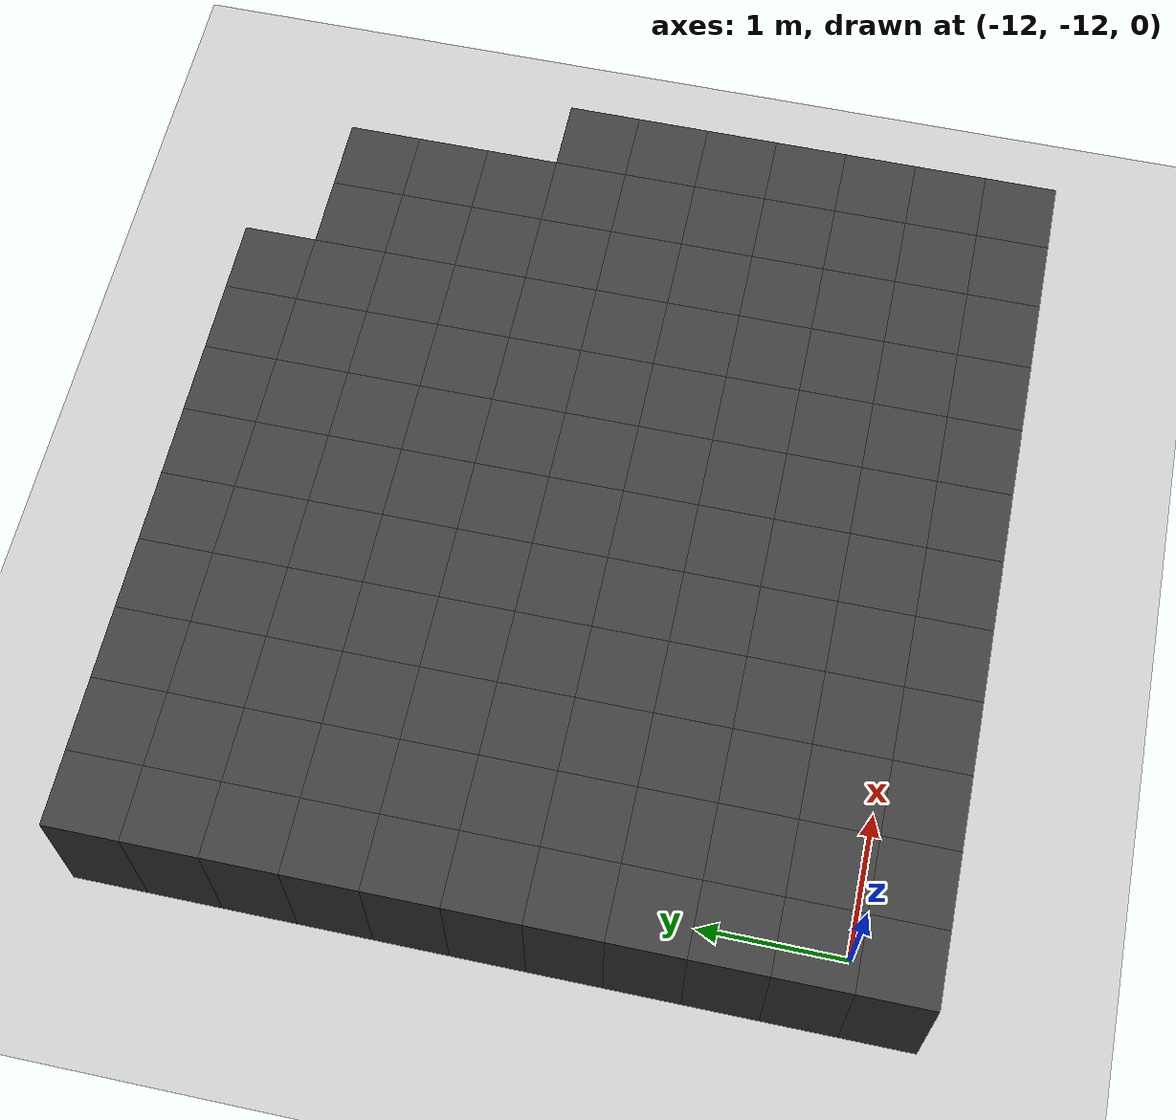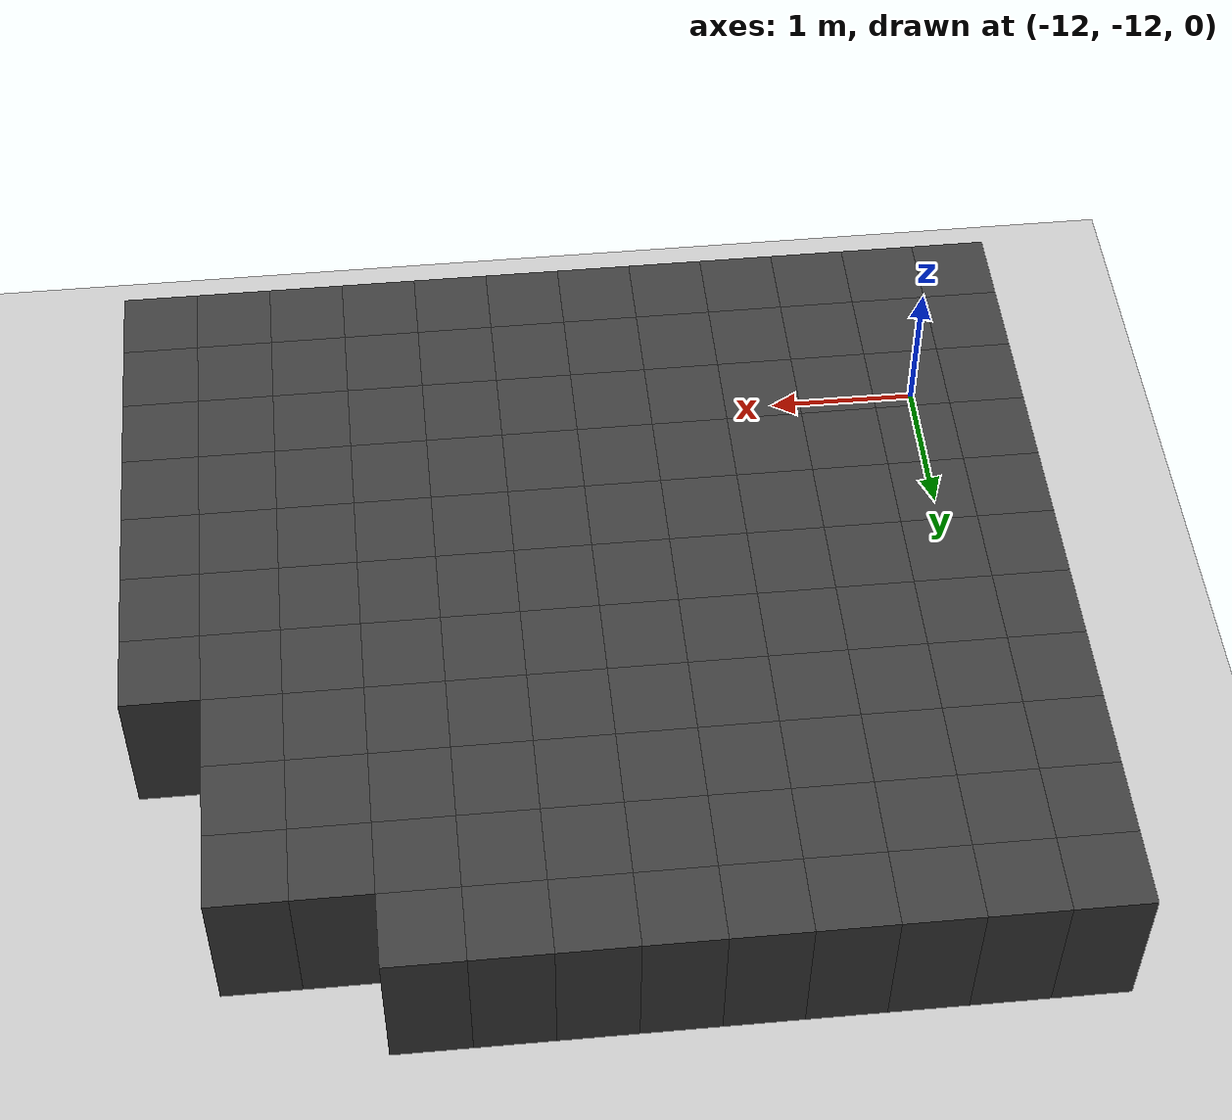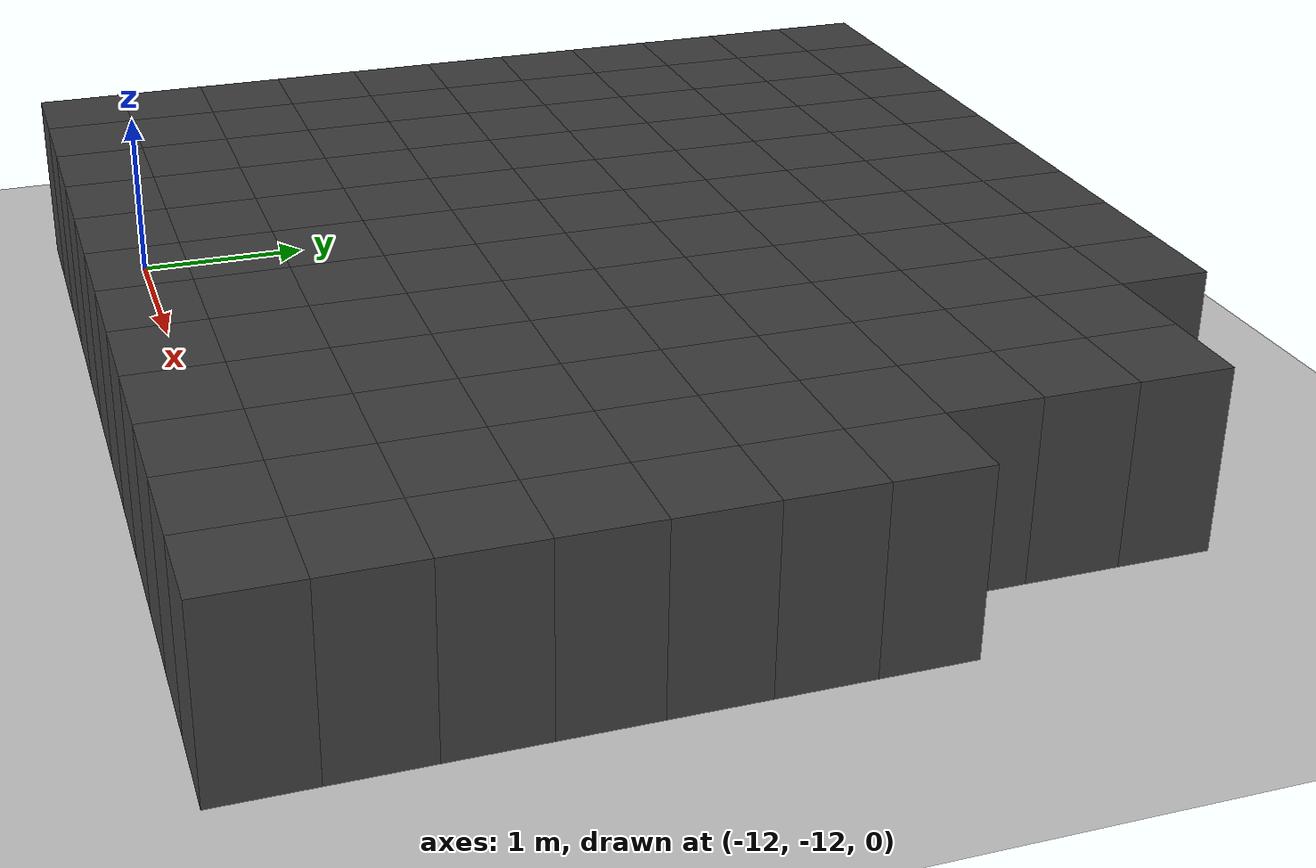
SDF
<sdf version="1.7">
 <world name="map_11672">
  <model name="ground_plane">
   <static>true</static>
   <link name="link">
    <collision name="collision">
     <geometry><plane><normal>0 0 1</normal><size>200 200</size></plane></geometry>
    </collision>
    <visual name="visual">
     <geometry><plane><normal>0 0 1</normal><size>200 200</size></plane></geometry>
     <material><ambient>0.8 0.8 0.8 1</ambient><diffuse>0.8 0.8 0.8 1</diffuse></material>
    </visual>
   </link>
  </model>
  <model name="maze_environment">
   <static>true</static>
   <link name="wall_1628">
    <pose>-12.250 -7.250 0.500 0 0 0</pose>
    <collision name="col"><geometry><box><size>0.5 0.5 1.0</size></box></geometry></collision>
    <visual name="vis">
     <geometry><box><size>0.5 0.5 1.0</size></box></geometry>
     <material><ambient>0.15 0.15 0.15 1</ambient><diffuse>0.25 0.25 0.25 1</diffuse></material>
    </visual>
   </link>
   <link name="wall_1629">
    <pose>-11.750 -7.250 0.500 0 0 0</pose>
    <collision name="col"><geometry><box><size>0.5 0.5 1.0</size></box></geometry></collision>
    <visual name="vis">
     <geometry><box><size>0.5 0.5 1.0</size></box></geometry>
     <material><ambient>0.15 0.15 0.15 1</ambient><diffuse>0.25 0.25 0.25 1</diffuse></material>
    </visual>
   </link>
   <link name="wall_1630">
    <pose>-11.250 -7.250 0.500 0 0 0</pose>
    <collision name="col"><geometry><box><size>0.5 0.5 1.0</size></box></geometry></collision>
    <visual name="vis">
     <geometry><box><size>0.5 0.5 1.0</size></box></geometry>
     <material><ambient>0.15 0.15 0.15 1</ambient><diffuse>0.25 0.25 0.25 1</diffuse></material>
    </visual>
   </link>
   <link name="wall_1631">
    <pose>-10.750 -7.250 0.500 0 0 0</pose>
    <collision name="col"><geometry><box><size>0.5 0.5 1.0</size></box></geometry></collision>
    <visual name="vis">
     <geometry><box><size>0.5 0.5 1.0</size></box></geometry>
     <material><ambient>0.15 0.15 0.15 1</ambient><diffuse>0.25 0.25 0.25 1</diffuse></material>
    </visual>
   </link>
   <link name="wall_1632">
    <pose>-10.250 -7.250 0.500 0 0 0</pose>
    <collision name="col"><geometry><box><size>0.5 0.5 1.0</size></box></geometry></collision>
    <visual name="vis">
     <geometry><box><size>0.5 0.5 1.0</size></box></geometry>
     <material><ambient>0.15 0.15 0.15 1</ambient><diffuse>0.25 0.25 0.25 1</diffuse></material>
    </visual>
   </link>
   <link name="wall_1633">
    <pose>-9.750 -7.250 0.500 0 0 0</pose>
    <collision name="col"><geometry><box><size>0.5 0.5 1.0</size></box></geometry></collision>
    <visual name="vis">
     <geometry><box><size>0.5 0.5 1.0</size></box></geometry>
     <material><ambient>0.15 0.15 0.15 1</ambient><diffuse>0.25 0.25 0.25 1</diffuse></material>
    </visual>
   </link>
   <link name="wall_1634">
    <pose>-9.250 -7.250 0.500 0 0 0</pose>
    <collision name="col"><geometry><box><size>0.5 0.5 1.0</size></box></geometry></collision>
    <visual name="vis">
     <geometry><box><size>0.5 0.5 1.0</size></box></geometry>
     <material><ambient>0.15 0.15 0.15 1</ambient><diffuse>0.25 0.25 0.25 1</diffuse></material>
    </visual>
   </link>
   <link name="wall_1635">
    <pose>-8.750 -7.250 0.500 0 0 0</pose>
    <collision name="col"><geometry><box><size>0.5 0.5 1.0</size></box></geometry></collision>
    <visual name="vis">
     <geometry><box><size>0.5 0.5 1.0</size></box></geometry>
     <material><ambient>0.15 0.15 0.15 1</ambient><diffuse>0.25 0.25 0.25 1</diffuse></material>
    </visual>
   </link>
   <link name="wall_1636">
    <pose>-8.250 -7.250 0.500 0 0 0</pose>
    <collision name="col"><geometry><box><size>0.5 0.5 1.0</size></box></geometry></collision>
    <visual name="vis">
     <geometry><box><size>0.5 0.5 1.0</size></box></geometry>
     <material><ambient>0.15 0.15 0.15 1</ambient><diffuse>0.25 0.25 0.25 1</diffuse></material>
    </visual>
   </link>
   <link name="wall_1677">
    <pose>-12.250 -7.750 0.500 0 0 0</pose>
    <collision name="col"><geometry><box><size>0.5 0.5 1.0</size></box></geometry></collision>
    <visual name="vis">
     <geometry><box><size>0.5 0.5 1.0</size></box></geometry>
     <material><ambient>0.15 0.15 0.15 1</ambient><diffuse>0.25 0.25 0.25 1</diffuse></material>
    </visual>
   </link>
   <link name="wall_1678">
    <pose>-11.750 -7.750 0.500 0 0 0</pose>
    <collision name="col"><geometry><box><size>0.5 0.5 1.0</size></box></geometry></collision>
    <visual name="vis">
     <geometry><box><size>0.5 0.5 1.0</size></box></geometry>
     <material><ambient>0.15 0.15 0.15 1</ambient><diffuse>0.25 0.25 0.25 1</diffuse></material>
    </visual>
   </link>
   <link name="wall_1679">
    <pose>-11.250 -7.750 0.500 0 0 0</pose>
    <collision name="col"><geometry><box><size>0.5 0.5 1.0</size></box></geometry></collision>
    <visual name="vis">
     <geometry><box><size>0.5 0.5 1.0</size></box></geometry>
     <material><ambient>0.15 0.15 0.15 1</ambient><diffuse>0.25 0.25 0.25 1</diffuse></material>
    </visual>
   </link>
   <link name="wall_1680">
    <pose>-10.750 -7.750 0.500 0 0 0</pose>
    <collision name="col"><geometry><box><size>0.5 0.5 1.0</size></box></geometry></collision>
    <visual name="vis">
     <geometry><box><size>0.5 0.5 1.0</size></box></geometry>
     <material><ambient>0.15 0.15 0.15 1</ambient><diffuse>0.25 0.25 0.25 1</diffuse></material>
    </visual>
   </link>
   <link name="wall_1681">
    <pose>-10.250 -7.750 0.500 0 0 0</pose>
    <collision name="col"><geometry><box><size>0.5 0.5 1.0</size></box></geometry></collision>
    <visual name="vis">
     <geometry><box><size>0.5 0.5 1.0</size></box></geometry>
     <material><ambient>0.15 0.15 0.15 1</ambient><diffuse>0.25 0.25 0.25 1</diffuse></material>
    </visual>
   </link>
   <link name="wall_1682">
    <pose>-9.750 -7.750 0.500 0 0 0</pose>
    <collision name="col"><geometry><box><size>0.5 0.5 1.0</size></box></geometry></collision>
    <visual name="vis">
     <geometry><box><size>0.5 0.5 1.0</size></box></geometry>
     <material><ambient>0.15 0.15 0.15 1</ambient><diffuse>0.25 0.25 0.25 1</diffuse></material>
    </visual>
   </link>
   <link name="wall_1683">
    <pose>-9.250 -7.750 0.500 0 0 0</pose>
    <collision name="col"><geometry><box><size>0.5 0.5 1.0</size></box></geometry></collision>
    <visual name="vis">
     <geometry><box><size>0.5 0.5 1.0</size></box></geometry>
     <material><ambient>0.15 0.15 0.15 1</ambient><diffuse>0.25 0.25 0.25 1</diffuse></material>
    </visual>
   </link>
   <link name="wall_1684">
    <pose>-8.750 -7.750 0.500 0 0 0</pose>
    <collision name="col"><geometry><box><size>0.5 0.5 1.0</size></box></geometry></collision>
    <visual name="vis">
     <geometry><box><size>0.5 0.5 1.0</size></box></geometry>
     <material><ambient>0.15 0.15 0.15 1</ambient><diffuse>0.25 0.25 0.25 1</diffuse></material>
    </visual>
   </link>
   <link name="wall_1685">
    <pose>-8.250 -7.750 0.500 0 0 0</pose>
    <collision name="col"><geometry><box><size>0.5 0.5 1.0</size></box></geometry></collision>
    <visual name="vis">
     <geometry><box><size>0.5 0.5 1.0</size></box></geometry>
     <material><ambient>0.15 0.15 0.15 1</ambient><diffuse>0.25 0.25 0.25 1</diffuse></material>
    </visual>
   </link>
   <link name="wall_1686">
    <pose>-7.750 -7.750 0.500 0 0 0</pose>
    <collision name="col"><geometry><box><size>0.5 0.5 1.0</size></box></geometry></collision>
    <visual name="vis">
     <geometry><box><size>0.5 0.5 1.0</size></box></geometry>
     <material><ambient>0.15 0.15 0.15 1</ambient><diffuse>0.25 0.25 0.25 1</diffuse></material>
    </visual>
   </link>
   <link name="wall_1687">
    <pose>-7.250 -7.750 0.500 0 0 0</pose>
    <collision name="col"><geometry><box><size>0.5 0.5 1.0</size></box></geometry></collision>
    <visual name="vis">
     <geometry><box><size>0.5 0.5 1.0</size></box></geometry>
     <material><ambient>0.15 0.15 0.15 1</ambient><diffuse>0.25 0.25 0.25 1</diffuse></material>
    </visual>
   </link>
   <link name="wall_1726">
    <pose>-12.250 -8.250 0.500 0 0 0</pose>
    <collision name="col"><geometry><box><size>0.5 0.5 1.0</size></box></geometry></collision>
    <visual name="vis">
     <geometry><box><size>0.5 0.5 1.0</size></box></geometry>
     <material><ambient>0.15 0.15 0.15 1</ambient><diffuse>0.25 0.25 0.25 1</diffuse></material>
    </visual>
   </link>
   <link name="wall_1727">
    <pose>-11.750 -8.250 0.500 0 0 0</pose>
    <collision name="col"><geometry><box><size>0.5 0.5 1.0</size></box></geometry></collision>
    <visual name="vis">
     <geometry><box><size>0.5 0.5 1.0</size></box></geometry>
     <material><ambient>0.15 0.15 0.15 1</ambient><diffuse>0.25 0.25 0.25 1</diffuse></material>
    </visual>
   </link>
   <link name="wall_1728">
    <pose>-11.250 -8.250 0.500 0 0 0</pose>
    <collision name="col"><geometry><box><size>0.5 0.5 1.0</size></box></geometry></collision>
    <visual name="vis">
     <geometry><box><size>0.5 0.5 1.0</size></box></geometry>
     <material><ambient>0.15 0.15 0.15 1</ambient><diffuse>0.25 0.25 0.25 1</diffuse></material>
    </visual>
   </link>
   <link name="wall_1729">
    <pose>-10.750 -8.250 0.500 0 0 0</pose>
    <collision name="col"><geometry><box><size>0.5 0.5 1.0</size></box></geometry></collision>
    <visual name="vis">
     <geometry><box><size>0.5 0.5 1.0</size></box></geometry>
     <material><ambient>0.15 0.15 0.15 1</ambient><diffuse>0.25 0.25 0.25 1</diffuse></material>
    </visual>
   </link>
   <link name="wall_1730">
    <pose>-10.250 -8.250 0.500 0 0 0</pose>
    <collision name="col"><geometry><box><size>0.5 0.5 1.0</size></box></geometry></collision>
    <visual name="vis">
     <geometry><box><size>0.5 0.5 1.0</size></box></geometry>
     <material><ambient>0.15 0.15 0.15 1</ambient><diffuse>0.25 0.25 0.25 1</diffuse></material>
    </visual>
   </link>
   <link name="wall_1731">
    <pose>-9.750 -8.250 0.500 0 0 0</pose>
    <collision name="col"><geometry><box><size>0.5 0.5 1.0</size></box></geometry></collision>
    <visual name="vis">
     <geometry><box><size>0.5 0.5 1.0</size></box></geometry>
     <material><ambient>0.15 0.15 0.15 1</ambient><diffuse>0.25 0.25 0.25 1</diffuse></material>
    </visual>
   </link>
   <link name="wall_1732">
    <pose>-9.250 -8.250 0.500 0 0 0</pose>
    <collision name="col"><geometry><box><size>0.5 0.5 1.0</size></box></geometry></collision>
    <visual name="vis">
     <geometry><box><size>0.5 0.5 1.0</size></box></geometry>
     <material><ambient>0.15 0.15 0.15 1</ambient><diffuse>0.25 0.25 0.25 1</diffuse></material>
    </visual>
   </link>
   <link name="wall_1733">
    <pose>-8.750 -8.250 0.500 0 0 0</pose>
    <collision name="col"><geometry><box><size>0.5 0.5 1.0</size></box></geometry></collision>
    <visual name="vis">
     <geometry><box><size>0.5 0.5 1.0</size></box></geometry>
     <material><ambient>0.15 0.15 0.15 1</ambient><diffuse>0.25 0.25 0.25 1</diffuse></material>
    </visual>
   </link>
   <link name="wall_1734">
    <pose>-8.250 -8.250 0.500 0 0 0</pose>
    <collision name="col"><geometry><box><size>0.5 0.5 1.0</size></box></geometry></collision>
    <visual name="vis">
     <geometry><box><size>0.5 0.5 1.0</size></box></geometry>
     <material><ambient>0.15 0.15 0.15 1</ambient><diffuse>0.25 0.25 0.25 1</diffuse></material>
    </visual>
   </link>
   <link name="wall_1735">
    <pose>-7.750 -8.250 0.500 0 0 0</pose>
    <collision name="col"><geometry><box><size>0.5 0.5 1.0</size></box></geometry></collision>
    <visual name="vis">
     <geometry><box><size>0.5 0.5 1.0</size></box></geometry>
     <material><ambient>0.15 0.15 0.15 1</ambient><diffuse>0.25 0.25 0.25 1</diffuse></material>
    </visual>
   </link>
   <link name="wall_1736">
    <pose>-7.250 -8.250 0.500 0 0 0</pose>
    <collision name="col"><geometry><box><size>0.5 0.5 1.0</size></box></geometry></collision>
    <visual name="vis">
     <geometry><box><size>0.5 0.5 1.0</size></box></geometry>
     <material><ambient>0.15 0.15 0.15 1</ambient><diffuse>0.25 0.25 0.25 1</diffuse></material>
    </visual>
   </link>
   <link name="wall_1775">
    <pose>-12.250 -8.750 0.500 0 0 0</pose>
    <collision name="col"><geometry><box><size>0.5 0.5 1.0</size></box></geometry></collision>
    <visual name="vis">
     <geometry><box><size>0.5 0.5 1.0</size></box></geometry>
     <material><ambient>0.15 0.15 0.15 1</ambient><diffuse>0.25 0.25 0.25 1</diffuse></material>
    </visual>
   </link>
   <link name="wall_1776">
    <pose>-11.750 -8.750 0.500 0 0 0</pose>
    <collision name="col"><geometry><box><size>0.5 0.5 1.0</size></box></geometry></collision>
    <visual name="vis">
     <geometry><box><size>0.5 0.5 1.0</size></box></geometry>
     <material><ambient>0.15 0.15 0.15 1</ambient><diffuse>0.25 0.25 0.25 1</diffuse></material>
    </visual>
   </link>
   <link name="wall_1777">
    <pose>-11.250 -8.750 0.500 0 0 0</pose>
    <collision name="col"><geometry><box><size>0.5 0.5 1.0</size></box></geometry></collision>
    <visual name="vis">
     <geometry><box><size>0.5 0.5 1.0</size></box></geometry>
     <material><ambient>0.15 0.15 0.15 1</ambient><diffuse>0.25 0.25 0.25 1</diffuse></material>
    </visual>
   </link>
   <link name="wall_1778">
    <pose>-10.750 -8.750 0.500 0 0 0</pose>
    <collision name="col"><geometry><box><size>0.5 0.5 1.0</size></box></geometry></collision>
    <visual name="vis">
     <geometry><box><size>0.5 0.5 1.0</size></box></geometry>
     <material><ambient>0.15 0.15 0.15 1</ambient><diffuse>0.25 0.25 0.25 1</diffuse></material>
    </visual>
   </link>
   <link name="wall_1779">
    <pose>-10.250 -8.750 0.500 0 0 0</pose>
    <collision name="col"><geometry><box><size>0.5 0.5 1.0</size></box></geometry></collision>
    <visual name="vis">
     <geometry><box><size>0.5 0.5 1.0</size></box></geometry>
     <material><ambient>0.15 0.15 0.15 1</ambient><diffuse>0.25 0.25 0.25 1</diffuse></material>
    </visual>
   </link>
   <link name="wall_1780">
    <pose>-9.750 -8.750 0.500 0 0 0</pose>
    <collision name="col"><geometry><box><size>0.5 0.5 1.0</size></box></geometry></collision>
    <visual name="vis">
     <geometry><box><size>0.5 0.5 1.0</size></box></geometry>
     <material><ambient>0.15 0.15 0.15 1</ambient><diffuse>0.25 0.25 0.25 1</diffuse></material>
    </visual>
   </link>
   <link name="wall_1781">
    <pose>-9.250 -8.750 0.500 0 0 0</pose>
    <collision name="col"><geometry><box><size>0.5 0.5 1.0</size></box></geometry></collision>
    <visual name="vis">
     <geometry><box><size>0.5 0.5 1.0</size></box></geometry>
     <material><ambient>0.15 0.15 0.15 1</ambient><diffuse>0.25 0.25 0.25 1</diffuse></material>
    </visual>
   </link>
   <link name="wall_1782">
    <pose>-8.750 -8.750 0.500 0 0 0</pose>
    <collision name="col"><geometry><box><size>0.5 0.5 1.0</size></box></geometry></collision>
    <visual name="vis">
     <geometry><box><size>0.5 0.5 1.0</size></box></geometry>
     <material><ambient>0.15 0.15 0.15 1</ambient><diffuse>0.25 0.25 0.25 1</diffuse></material>
    </visual>
   </link>
   <link name="wall_1783">
    <pose>-8.250 -8.750 0.500 0 0 0</pose>
    <collision name="col"><geometry><box><size>0.5 0.5 1.0</size></box></geometry></collision>
    <visual name="vis">
     <geometry><box><size>0.5 0.5 1.0</size></box></geometry>
     <material><ambient>0.15 0.15 0.15 1</ambient><diffuse>0.25 0.25 0.25 1</diffuse></material>
    </visual>
   </link>
   <link name="wall_1784">
    <pose>-7.750 -8.750 0.500 0 0 0</pose>
    <collision name="col"><geometry><box><size>0.5 0.5 1.0</size></box></geometry></collision>
    <visual name="vis">
     <geometry><box><size>0.5 0.5 1.0</size></box></geometry>
     <material><ambient>0.15 0.15 0.15 1</ambient><diffuse>0.25 0.25 0.25 1</diffuse></material>
    </visual>
   </link>
   <link name="wall_1785">
    <pose>-7.250 -8.750 0.500 0 0 0</pose>
    <collision name="col"><geometry><box><size>0.5 0.5 1.0</size></box></geometry></collision>
    <visual name="vis">
     <geometry><box><size>0.5 0.5 1.0</size></box></geometry>
     <material><ambient>0.15 0.15 0.15 1</ambient><diffuse>0.25 0.25 0.25 1</diffuse></material>
    </visual>
   </link>
   <link name="wall_1824">
    <pose>-12.250 -9.250 0.500 0 0 0</pose>
    <collision name="col"><geometry><box><size>0.5 0.5 1.0</size></box></geometry></collision>
    <visual name="vis">
     <geometry><box><size>0.5 0.5 1.0</size></box></geometry>
     <material><ambient>0.15 0.15 0.15 1</ambient><diffuse>0.25 0.25 0.25 1</diffuse></material>
    </visual>
   </link>
   <link name="wall_1825">
    <pose>-11.750 -9.250 0.500 0 0 0</pose>
    <collision name="col"><geometry><box><size>0.5 0.5 1.0</size></box></geometry></collision>
    <visual name="vis">
     <geometry><box><size>0.5 0.5 1.0</size></box></geometry>
     <material><ambient>0.15 0.15 0.15 1</ambient><diffuse>0.25 0.25 0.25 1</diffuse></material>
    </visual>
   </link>
   <link name="wall_1826">
    <pose>-11.250 -9.250 0.500 0 0 0</pose>
    <collision name="col"><geometry><box><size>0.5 0.5 1.0</size></box></geometry></collision>
    <visual name="vis">
     <geometry><box><size>0.5 0.5 1.0</size></box></geometry>
     <material><ambient>0.15 0.15 0.15 1</ambient><diffuse>0.25 0.25 0.25 1</diffuse></material>
    </visual>
   </link>
   <link name="wall_1827">
    <pose>-10.750 -9.250 0.500 0 0 0</pose>
    <collision name="col"><geometry><box><size>0.5 0.5 1.0</size></box></geometry></collision>
    <visual name="vis">
     <geometry><box><size>0.5 0.5 1.0</size></box></geometry>
     <material><ambient>0.15 0.15 0.15 1</ambient><diffuse>0.25 0.25 0.25 1</diffuse></material>
    </visual>
   </link>
   <link name="wall_1828">
    <pose>-10.250 -9.250 0.500 0 0 0</pose>
    <collision name="col"><geometry><box><size>0.5 0.5 1.0</size></box></geometry></collision>
    <visual name="vis">
     <geometry><box><size>0.5 0.5 1.0</size></box></geometry>
     <material><ambient>0.15 0.15 0.15 1</ambient><diffuse>0.25 0.25 0.25 1</diffuse></material>
    </visual>
   </link>
   <link name="wall_1829">
    <pose>-9.750 -9.250 0.500 0 0 0</pose>
    <collision name="col"><geometry><box><size>0.5 0.5 1.0</size></box></geometry></collision>
    <visual name="vis">
     <geometry><box><size>0.5 0.5 1.0</size></box></geometry>
     <material><ambient>0.15 0.15 0.15 1</ambient><diffuse>0.25 0.25 0.25 1</diffuse></material>
    </visual>
   </link>
   <link name="wall_1830">
    <pose>-9.250 -9.250 0.500 0 0 0</pose>
    <collision name="col"><geometry><box><size>0.5 0.5 1.0</size></box></geometry></collision>
    <visual name="vis">
     <geometry><box><size>0.5 0.5 1.0</size></box></geometry>
     <material><ambient>0.15 0.15 0.15 1</ambient><diffuse>0.25 0.25 0.25 1</diffuse></material>
    </visual>
   </link>
   <link name="wall_1831">
    <pose>-8.750 -9.250 0.500 0 0 0</pose>
    <collision name="col"><geometry><box><size>0.5 0.5 1.0</size></box></geometry></collision>
    <visual name="vis">
     <geometry><box><size>0.5 0.5 1.0</size></box></geometry>
     <material><ambient>0.15 0.15 0.15 1</ambient><diffuse>0.25 0.25 0.25 1</diffuse></material>
    </visual>
   </link>
   <link name="wall_1832">
    <pose>-8.250 -9.250 0.500 0 0 0</pose>
    <collision name="col"><geometry><box><size>0.5 0.5 1.0</size></box></geometry></collision>
    <visual name="vis">
     <geometry><box><size>0.5 0.5 1.0</size></box></geometry>
     <material><ambient>0.15 0.15 0.15 1</ambient><diffuse>0.25 0.25 0.25 1</diffuse></material>
    </visual>
   </link>
   <link name="wall_1833">
    <pose>-7.750 -9.250 0.500 0 0 0</pose>
    <collision name="col"><geometry><box><size>0.5 0.5 1.0</size></box></geometry></collision>
    <visual name="vis">
     <geometry><box><size>0.5 0.5 1.0</size></box></geometry>
     <material><ambient>0.15 0.15 0.15 1</ambient><diffuse>0.25 0.25 0.25 1</diffuse></material>
    </visual>
   </link>
   <link name="wall_1834">
    <pose>-7.250 -9.250 0.500 0 0 0</pose>
    <collision name="col"><geometry><box><size>0.5 0.5 1.0</size></box></geometry></collision>
    <visual name="vis">
     <geometry><box><size>0.5 0.5 1.0</size></box></geometry>
     <material><ambient>0.15 0.15 0.15 1</ambient><diffuse>0.25 0.25 0.25 1</diffuse></material>
    </visual>
   </link>
   <link name="wall_1835">
    <pose>-6.750 -9.250 0.500 0 0 0</pose>
    <collision name="col"><geometry><box><size>0.5 0.5 1.0</size></box></geometry></collision>
    <visual name="vis">
     <geometry><box><size>0.5 0.5 1.0</size></box></geometry>
     <material><ambient>0.15 0.15 0.15 1</ambient><diffuse>0.25 0.25 0.25 1</diffuse></material>
    </visual>
   </link>
   <link name="wall_1873">
    <pose>-12.250 -9.750 0.500 0 0 0</pose>
    <collision name="col"><geometry><box><size>0.5 0.5 1.0</size></box></geometry></collision>
    <visual name="vis">
     <geometry><box><size>0.5 0.5 1.0</size></box></geometry>
     <material><ambient>0.15 0.15 0.15 1</ambient><diffuse>0.25 0.25 0.25 1</diffuse></material>
    </visual>
   </link>
   <link name="wall_1874">
    <pose>-11.750 -9.750 0.500 0 0 0</pose>
    <collision name="col"><geometry><box><size>0.5 0.5 1.0</size></box></geometry></collision>
    <visual name="vis">
     <geometry><box><size>0.5 0.5 1.0</size></box></geometry>
     <material><ambient>0.15 0.15 0.15 1</ambient><diffuse>0.25 0.25 0.25 1</diffuse></material>
    </visual>
   </link>
   <link name="wall_1875">
    <pose>-11.250 -9.750 0.500 0 0 0</pose>
    <collision name="col"><geometry><box><size>0.5 0.5 1.0</size></box></geometry></collision>
    <visual name="vis">
     <geometry><box><size>0.5 0.5 1.0</size></box></geometry>
     <material><ambient>0.15 0.15 0.15 1</ambient><diffuse>0.25 0.25 0.25 1</diffuse></material>
    </visual>
   </link>
   <link name="wall_1876">
    <pose>-10.750 -9.750 0.500 0 0 0</pose>
    <collision name="col"><geometry><box><size>0.5 0.5 1.0</size></box></geometry></collision>
    <visual name="vis">
     <geometry><box><size>0.5 0.5 1.0</size></box></geometry>
     <material><ambient>0.15 0.15 0.15 1</ambient><diffuse>0.25 0.25 0.25 1</diffuse></material>
    </visual>
   </link>
   <link name="wall_1877">
    <pose>-10.250 -9.750 0.500 0 0 0</pose>
    <collision name="col"><geometry><box><size>0.5 0.5 1.0</size></box></geometry></collision>
    <visual name="vis">
     <geometry><box><size>0.5 0.5 1.0</size></box></geometry>
     <material><ambient>0.15 0.15 0.15 1</ambient><diffuse>0.25 0.25 0.25 1</diffuse></material>
    </visual>
   </link>
   <link name="wall_1878">
    <pose>-9.750 -9.750 0.500 0 0 0</pose>
    <collision name="col"><geometry><box><size>0.5 0.5 1.0</size></box></geometry></collision>
    <visual name="vis">
     <geometry><box><size>0.5 0.5 1.0</size></box></geometry>
     <material><ambient>0.15 0.15 0.15 1</ambient><diffuse>0.25 0.25 0.25 1</diffuse></material>
    </visual>
   </link>
   <link name="wall_1879">
    <pose>-9.250 -9.750 0.500 0 0 0</pose>
    <collision name="col"><geometry><box><size>0.5 0.5 1.0</size></box></geometry></collision>
    <visual name="vis">
     <geometry><box><size>0.5 0.5 1.0</size></box></geometry>
     <material><ambient>0.15 0.15 0.15 1</ambient><diffuse>0.25 0.25 0.25 1</diffuse></material>
    </visual>
   </link>
   <link name="wall_1880">
    <pose>-8.750 -9.750 0.500 0 0 0</pose>
    <collision name="col"><geometry><box><size>0.5 0.5 1.0</size></box></geometry></collision>
    <visual name="vis">
     <geometry><box><size>0.5 0.5 1.0</size></box></geometry>
     <material><ambient>0.15 0.15 0.15 1</ambient><diffuse>0.25 0.25 0.25 1</diffuse></material>
    </visual>
   </link>
   <link name="wall_1881">
    <pose>-8.250 -9.750 0.500 0 0 0</pose>
    <collision name="col"><geometry><box><size>0.5 0.5 1.0</size></box></geometry></collision>
    <visual name="vis">
     <geometry><box><size>0.5 0.5 1.0</size></box></geometry>
     <material><ambient>0.15 0.15 0.15 1</ambient><diffuse>0.25 0.25 0.25 1</diffuse></material>
    </visual>
   </link>
   <link name="wall_1882">
    <pose>-7.750 -9.750 0.500 0 0 0</pose>
    <collision name="col"><geometry><box><size>0.5 0.5 1.0</size></box></geometry></collision>
    <visual name="vis">
     <geometry><box><size>0.5 0.5 1.0</size></box></geometry>
     <material><ambient>0.15 0.15 0.15 1</ambient><diffuse>0.25 0.25 0.25 1</diffuse></material>
    </visual>
   </link>
   <link name="wall_1883">
    <pose>-7.250 -9.750 0.500 0 0 0</pose>
    <collision name="col"><geometry><box><size>0.5 0.5 1.0</size></box></geometry></collision>
    <visual name="vis">
     <geometry><box><size>0.5 0.5 1.0</size></box></geometry>
     <material><ambient>0.15 0.15 0.15 1</ambient><diffuse>0.25 0.25 0.25 1</diffuse></material>
    </visual>
   </link>
   <link name="wall_1884">
    <pose>-6.750 -9.750 0.500 0 0 0</pose>
    <collision name="col"><geometry><box><size>0.5 0.5 1.0</size></box></geometry></collision>
    <visual name="vis">
     <geometry><box><size>0.5 0.5 1.0</size></box></geometry>
     <material><ambient>0.15 0.15 0.15 1</ambient><diffuse>0.25 0.25 0.25 1</diffuse></material>
    </visual>
   </link>
   <link name="wall_1922">
    <pose>-12.250 -10.250 0.500 0 0 0</pose>
    <collision name="col"><geometry><box><size>0.5 0.5 1.0</size></box></geometry></collision>
    <visual name="vis">
     <geometry><box><size>0.5 0.5 1.0</size></box></geometry>
     <material><ambient>0.15 0.15 0.15 1</ambient><diffuse>0.25 0.25 0.25 1</diffuse></material>
    </visual>
   </link>
   <link name="wall_1923">
    <pose>-11.750 -10.250 0.500 0 0 0</pose>
    <collision name="col"><geometry><box><size>0.5 0.5 1.0</size></box></geometry></collision>
    <visual name="vis">
     <geometry><box><size>0.5 0.5 1.0</size></box></geometry>
     <material><ambient>0.15 0.15 0.15 1</ambient><diffuse>0.25 0.25 0.25 1</diffuse></material>
    </visual>
   </link>
   <link name="wall_1924">
    <pose>-11.250 -10.250 0.500 0 0 0</pose>
    <collision name="col"><geometry><box><size>0.5 0.5 1.0</size></box></geometry></collision>
    <visual name="vis">
     <geometry><box><size>0.5 0.5 1.0</size></box></geometry>
     <material><ambient>0.15 0.15 0.15 1</ambient><diffuse>0.25 0.25 0.25 1</diffuse></material>
    </visual>
   </link>
   <link name="wall_1925">
    <pose>-10.750 -10.250 0.500 0 0 0</pose>
    <collision name="col"><geometry><box><size>0.5 0.5 1.0</size></box></geometry></collision>
    <visual name="vis">
     <geometry><box><size>0.5 0.5 1.0</size></box></geometry>
     <material><ambient>0.15 0.15 0.15 1</ambient><diffuse>0.25 0.25 0.25 1</diffuse></material>
    </visual>
   </link>
   <link name="wall_1926">
    <pose>-10.250 -10.250 0.500 0 0 0</pose>
    <collision name="col"><geometry><box><size>0.5 0.5 1.0</size></box></geometry></collision>
    <visual name="vis">
     <geometry><box><size>0.5 0.5 1.0</size></box></geometry>
     <material><ambient>0.15 0.15 0.15 1</ambient><diffuse>0.25 0.25 0.25 1</diffuse></material>
    </visual>
   </link>
   <link name="wall_1927">
    <pose>-9.750 -10.250 0.500 0 0 0</pose>
    <collision name="col"><geometry><box><size>0.5 0.5 1.0</size></box></geometry></collision>
    <visual name="vis">
     <geometry><box><size>0.5 0.5 1.0</size></box></geometry>
     <material><ambient>0.15 0.15 0.15 1</ambient><diffuse>0.25 0.25 0.25 1</diffuse></material>
    </visual>
   </link>
   <link name="wall_1928">
    <pose>-9.250 -10.250 0.500 0 0 0</pose>
    <collision name="col"><geometry><box><size>0.5 0.5 1.0</size></box></geometry></collision>
    <visual name="vis">
     <geometry><box><size>0.5 0.5 1.0</size></box></geometry>
     <material><ambient>0.15 0.15 0.15 1</ambient><diffuse>0.25 0.25 0.25 1</diffuse></material>
    </visual>
   </link>
   <link name="wall_1929">
    <pose>-8.750 -10.250 0.500 0 0 0</pose>
    <collision name="col"><geometry><box><size>0.5 0.5 1.0</size></box></geometry></collision>
    <visual name="vis">
     <geometry><box><size>0.5 0.5 1.0</size></box></geometry>
     <material><ambient>0.15 0.15 0.15 1</ambient><diffuse>0.25 0.25 0.25 1</diffuse></material>
    </visual>
   </link>
   <link name="wall_1930">
    <pose>-8.250 -10.250 0.500 0 0 0</pose>
    <collision name="col"><geometry><box><size>0.5 0.5 1.0</size></box></geometry></collision>
    <visual name="vis">
     <geometry><box><size>0.5 0.5 1.0</size></box></geometry>
     <material><ambient>0.15 0.15 0.15 1</ambient><diffuse>0.25 0.25 0.25 1</diffuse></material>
    </visual>
   </link>
   <link name="wall_1931">
    <pose>-7.750 -10.250 0.500 0 0 0</pose>
    <collision name="col"><geometry><box><size>0.5 0.5 1.0</size></box></geometry></collision>
    <visual name="vis">
     <geometry><box><size>0.5 0.5 1.0</size></box></geometry>
     <material><ambient>0.15 0.15 0.15 1</ambient><diffuse>0.25 0.25 0.25 1</diffuse></material>
    </visual>
   </link>
   <link name="wall_1932">
    <pose>-7.250 -10.250 0.500 0 0 0</pose>
    <collision name="col"><geometry><box><size>0.5 0.5 1.0</size></box></geometry></collision>
    <visual name="vis">
     <geometry><box><size>0.5 0.5 1.0</size></box></geometry>
     <material><ambient>0.15 0.15 0.15 1</ambient><diffuse>0.25 0.25 0.25 1</diffuse></material>
    </visual>
   </link>
   <link name="wall_1933">
    <pose>-6.750 -10.250 0.500 0 0 0</pose>
    <collision name="col"><geometry><box><size>0.5 0.5 1.0</size></box></geometry></collision>
    <visual name="vis">
     <geometry><box><size>0.5 0.5 1.0</size></box></geometry>
     <material><ambient>0.15 0.15 0.15 1</ambient><diffuse>0.25 0.25 0.25 1</diffuse></material>
    </visual>
   </link>
   <link name="wall_1971">
    <pose>-12.250 -10.750 0.500 0 0 0</pose>
    <collision name="col"><geometry><box><size>0.5 0.5 1.0</size></box></geometry></collision>
    <visual name="vis">
     <geometry><box><size>0.5 0.5 1.0</size></box></geometry>
     <material><ambient>0.15 0.15 0.15 1</ambient><diffuse>0.25 0.25 0.25 1</diffuse></material>
    </visual>
   </link>
   <link name="wall_1972">
    <pose>-11.750 -10.750 0.500 0 0 0</pose>
    <collision name="col"><geometry><box><size>0.5 0.5 1.0</size></box></geometry></collision>
    <visual name="vis">
     <geometry><box><size>0.5 0.5 1.0</size></box></geometry>
     <material><ambient>0.15 0.15 0.15 1</ambient><diffuse>0.25 0.25 0.25 1</diffuse></material>
    </visual>
   </link>
   <link name="wall_1973">
    <pose>-11.250 -10.750 0.500 0 0 0</pose>
    <collision name="col"><geometry><box><size>0.5 0.5 1.0</size></box></geometry></collision>
    <visual name="vis">
     <geometry><box><size>0.5 0.5 1.0</size></box></geometry>
     <material><ambient>0.15 0.15 0.15 1</ambient><diffuse>0.25 0.25 0.25 1</diffuse></material>
    </visual>
   </link>
   <link name="wall_1974">
    <pose>-10.750 -10.750 0.500 0 0 0</pose>
    <collision name="col"><geometry><box><size>0.5 0.5 1.0</size></box></geometry></collision>
    <visual name="vis">
     <geometry><box><size>0.5 0.5 1.0</size></box></geometry>
     <material><ambient>0.15 0.15 0.15 1</ambient><diffuse>0.25 0.25 0.25 1</diffuse></material>
    </visual>
   </link>
   <link name="wall_1975">
    <pose>-10.250 -10.750 0.500 0 0 0</pose>
    <collision name="col"><geometry><box><size>0.5 0.5 1.0</size></box></geometry></collision>
    <visual name="vis">
     <geometry><box><size>0.5 0.5 1.0</size></box></geometry>
     <material><ambient>0.15 0.15 0.15 1</ambient><diffuse>0.25 0.25 0.25 1</diffuse></material>
    </visual>
   </link>
   <link name="wall_1976">
    <pose>-9.750 -10.750 0.500 0 0 0</pose>
    <collision name="col"><geometry><box><size>0.5 0.5 1.0</size></box></geometry></collision>
    <visual name="vis">
     <geometry><box><size>0.5 0.5 1.0</size></box></geometry>
     <material><ambient>0.15 0.15 0.15 1</ambient><diffuse>0.25 0.25 0.25 1</diffuse></material>
    </visual>
   </link>
   <link name="wall_1977">
    <pose>-9.250 -10.750 0.500 0 0 0</pose>
    <collision name="col"><geometry><box><size>0.5 0.5 1.0</size></box></geometry></collision>
    <visual name="vis">
     <geometry><box><size>0.5 0.5 1.0</size></box></geometry>
     <material><ambient>0.15 0.15 0.15 1</ambient><diffuse>0.25 0.25 0.25 1</diffuse></material>
    </visual>
   </link>
   <link name="wall_1978">
    <pose>-8.750 -10.750 0.500 0 0 0</pose>
    <collision name="col"><geometry><box><size>0.5 0.5 1.0</size></box></geometry></collision>
    <visual name="vis">
     <geometry><box><size>0.5 0.5 1.0</size></box></geometry>
     <material><ambient>0.15 0.15 0.15 1</ambient><diffuse>0.25 0.25 0.25 1</diffuse></material>
    </visual>
   </link>
   <link name="wall_1979">
    <pose>-8.250 -10.750 0.500 0 0 0</pose>
    <collision name="col"><geometry><box><size>0.5 0.5 1.0</size></box></geometry></collision>
    <visual name="vis">
     <geometry><box><size>0.5 0.5 1.0</size></box></geometry>
     <material><ambient>0.15 0.15 0.15 1</ambient><diffuse>0.25 0.25 0.25 1</diffuse></material>
    </visual>
   </link>
   <link name="wall_1980">
    <pose>-7.750 -10.750 0.500 0 0 0</pose>
    <collision name="col"><geometry><box><size>0.5 0.5 1.0</size></box></geometry></collision>
    <visual name="vis">
     <geometry><box><size>0.5 0.5 1.0</size></box></geometry>
     <material><ambient>0.15 0.15 0.15 1</ambient><diffuse>0.25 0.25 0.25 1</diffuse></material>
    </visual>
   </link>
   <link name="wall_1981">
    <pose>-7.250 -10.750 0.500 0 0 0</pose>
    <collision name="col"><geometry><box><size>0.5 0.5 1.0</size></box></geometry></collision>
    <visual name="vis">
     <geometry><box><size>0.5 0.5 1.0</size></box></geometry>
     <material><ambient>0.15 0.15 0.15 1</ambient><diffuse>0.25 0.25 0.25 1</diffuse></material>
    </visual>
   </link>
   <link name="wall_1982">
    <pose>-6.750 -10.750 0.500 0 0 0</pose>
    <collision name="col"><geometry><box><size>0.5 0.5 1.0</size></box></geometry></collision>
    <visual name="vis">
     <geometry><box><size>0.5 0.5 1.0</size></box></geometry>
     <material><ambient>0.15 0.15 0.15 1</ambient><diffuse>0.25 0.25 0.25 1</diffuse></material>
    </visual>
   </link>
   <link name="wall_2017">
    <pose>-12.250 -11.250 0.500 0 0 0</pose>
    <collision name="col"><geometry><box><size>0.5 0.5 1.0</size></box></geometry></collision>
    <visual name="vis">
     <geometry><box><size>0.5 0.5 1.0</size></box></geometry>
     <material><ambient>0.15 0.15 0.15 1</ambient><diffuse>0.25 0.25 0.25 1</diffuse></material>
    </visual>
   </link>
   <link name="wall_2018">
    <pose>-11.750 -11.250 0.500 0 0 0</pose>
    <collision name="col"><geometry><box><size>0.5 0.5 1.0</size></box></geometry></collision>
    <visual name="vis">
     <geometry><box><size>0.5 0.5 1.0</size></box></geometry>
     <material><ambient>0.15 0.15 0.15 1</ambient><diffuse>0.25 0.25 0.25 1</diffuse></material>
    </visual>
   </link>
   <link name="wall_2019">
    <pose>-11.250 -11.250 0.500 0 0 0</pose>
    <collision name="col"><geometry><box><size>0.5 0.5 1.0</size></box></geometry></collision>
    <visual name="vis">
     <geometry><box><size>0.5 0.5 1.0</size></box></geometry>
     <material><ambient>0.15 0.15 0.15 1</ambient><diffuse>0.25 0.25 0.25 1</diffuse></material>
    </visual>
   </link>
   <link name="wall_2020">
    <pose>-10.750 -11.250 0.500 0 0 0</pose>
    <collision name="col"><geometry><box><size>0.5 0.5 1.0</size></box></geometry></collision>
    <visual name="vis">
     <geometry><box><size>0.5 0.5 1.0</size></box></geometry>
     <material><ambient>0.15 0.15 0.15 1</ambient><diffuse>0.25 0.25 0.25 1</diffuse></material>
    </visual>
   </link>
   <link name="wall_2021">
    <pose>-10.250 -11.250 0.500 0 0 0</pose>
    <collision name="col"><geometry><box><size>0.5 0.5 1.0</size></box></geometry></collision>
    <visual name="vis">
     <geometry><box><size>0.5 0.5 1.0</size></box></geometry>
     <material><ambient>0.15 0.15 0.15 1</ambient><diffuse>0.25 0.25 0.25 1</diffuse></material>
    </visual>
   </link>
   <link name="wall_2022">
    <pose>-9.750 -11.250 0.500 0 0 0</pose>
    <collision name="col"><geometry><box><size>0.5 0.5 1.0</size></box></geometry></collision>
    <visual name="vis">
     <geometry><box><size>0.5 0.5 1.0</size></box></geometry>
     <material><ambient>0.15 0.15 0.15 1</ambient><diffuse>0.25 0.25 0.25 1</diffuse></material>
    </visual>
   </link>
   <link name="wall_2023">
    <pose>-9.250 -11.250 0.500 0 0 0</pose>
    <collision name="col"><geometry><box><size>0.5 0.5 1.0</size></box></geometry></collision>
    <visual name="vis">
     <geometry><box><size>0.5 0.5 1.0</size></box></geometry>
     <material><ambient>0.15 0.15 0.15 1</ambient><diffuse>0.25 0.25 0.25 1</diffuse></material>
    </visual>
   </link>
   <link name="wall_2024">
    <pose>-8.750 -11.250 0.500 0 0 0</pose>
    <collision name="col"><geometry><box><size>0.5 0.5 1.0</size></box></geometry></collision>
    <visual name="vis">
     <geometry><box><size>0.5 0.5 1.0</size></box></geometry>
     <material><ambient>0.15 0.15 0.15 1</ambient><diffuse>0.25 0.25 0.25 1</diffuse></material>
    </visual>
   </link>
   <link name="wall_2025">
    <pose>-8.250 -11.250 0.500 0 0 0</pose>
    <collision name="col"><geometry><box><size>0.5 0.5 1.0</size></box></geometry></collision>
    <visual name="vis">
     <geometry><box><size>0.5 0.5 1.0</size></box></geometry>
     <material><ambient>0.15 0.15 0.15 1</ambient><diffuse>0.25 0.25 0.25 1</diffuse></material>
    </visual>
   </link>
   <link name="wall_2026">
    <pose>-7.750 -11.250 0.500 0 0 0</pose>
    <collision name="col"><geometry><box><size>0.5 0.5 1.0</size></box></geometry></collision>
    <visual name="vis">
     <geometry><box><size>0.5 0.5 1.0</size></box></geometry>
     <material><ambient>0.15 0.15 0.15 1</ambient><diffuse>0.25 0.25 0.25 1</diffuse></material>
    </visual>
   </link>
   <link name="wall_2027">
    <pose>-7.250 -11.250 0.500 0 0 0</pose>
    <collision name="col"><geometry><box><size>0.5 0.5 1.0</size></box></geometry></collision>
    <visual name="vis">
     <geometry><box><size>0.5 0.5 1.0</size></box></geometry>
     <material><ambient>0.15 0.15 0.15 1</ambient><diffuse>0.25 0.25 0.25 1</diffuse></material>
    </visual>
   </link>
   <link name="wall_2028">
    <pose>-6.750 -11.250 0.500 0 0 0</pose>
    <collision name="col"><geometry><box><size>0.5 0.5 1.0</size></box></geometry></collision>
    <visual name="vis">
     <geometry><box><size>0.5 0.5 1.0</size></box></geometry>
     <material><ambient>0.15 0.15 0.15 1</ambient><diffuse>0.25 0.25 0.25 1</diffuse></material>
    </visual>
   </link>
   <link name="wall_2060">
    <pose>-12.250 -11.750 0.500 0 0 0</pose>
    <collision name="col"><geometry><box><size>0.5 0.5 1.0</size></box></geometry></collision>
    <visual name="vis">
     <geometry><box><size>0.5 0.5 1.0</size></box></geometry>
     <material><ambient>0.15 0.15 0.15 1</ambient><diffuse>0.25 0.25 0.25 1</diffuse></material>
    </visual>
   </link>
   <link name="wall_2061">
    <pose>-11.750 -11.750 0.500 0 0 0</pose>
    <collision name="col"><geometry><box><size>0.5 0.5 1.0</size></box></geometry></collision>
    <visual name="vis">
     <geometry><box><size>0.5 0.5 1.0</size></box></geometry>
     <material><ambient>0.15 0.15 0.15 1</ambient><diffuse>0.25 0.25 0.25 1</diffuse></material>
    </visual>
   </link>
   <link name="wall_2062">
    <pose>-11.250 -11.750 0.500 0 0 0</pose>
    <collision name="col"><geometry><box><size>0.5 0.5 1.0</size></box></geometry></collision>
    <visual name="vis">
     <geometry><box><size>0.5 0.5 1.0</size></box></geometry>
     <material><ambient>0.15 0.15 0.15 1</ambient><diffuse>0.25 0.25 0.25 1</diffuse></material>
    </visual>
   </link>
   <link name="wall_2063">
    <pose>-10.750 -11.750 0.500 0 0 0</pose>
    <collision name="col"><geometry><box><size>0.5 0.5 1.0</size></box></geometry></collision>
    <visual name="vis">
     <geometry><box><size>0.5 0.5 1.0</size></box></geometry>
     <material><ambient>0.15 0.15 0.15 1</ambient><diffuse>0.25 0.25 0.25 1</diffuse></material>
    </visual>
   </link>
   <link name="wall_2064">
    <pose>-10.250 -11.750 0.500 0 0 0</pose>
    <collision name="col"><geometry><box><size>0.5 0.5 1.0</size></box></geometry></collision>
    <visual name="vis">
     <geometry><box><size>0.5 0.5 1.0</size></box></geometry>
     <material><ambient>0.15 0.15 0.15 1</ambient><diffuse>0.25 0.25 0.25 1</diffuse></material>
    </visual>
   </link>
   <link name="wall_2065">
    <pose>-9.750 -11.750 0.500 0 0 0</pose>
    <collision name="col"><geometry><box><size>0.5 0.5 1.0</size></box></geometry></collision>
    <visual name="vis">
     <geometry><box><size>0.5 0.5 1.0</size></box></geometry>
     <material><ambient>0.15 0.15 0.15 1</ambient><diffuse>0.25 0.25 0.25 1</diffuse></material>
    </visual>
   </link>
   <link name="wall_2066">
    <pose>-9.250 -11.750 0.500 0 0 0</pose>
    <collision name="col"><geometry><box><size>0.5 0.5 1.0</size></box></geometry></collision>
    <visual name="vis">
     <geometry><box><size>0.5 0.5 1.0</size></box></geometry>
     <material><ambient>0.15 0.15 0.15 1</ambient><diffuse>0.25 0.25 0.25 1</diffuse></material>
    </visual>
   </link>
   <link name="wall_2067">
    <pose>-8.750 -11.750 0.500 0 0 0</pose>
    <collision name="col"><geometry><box><size>0.5 0.5 1.0</size></box></geometry></collision>
    <visual name="vis">
     <geometry><box><size>0.5 0.5 1.0</size></box></geometry>
     <material><ambient>0.15 0.15 0.15 1</ambient><diffuse>0.25 0.25 0.25 1</diffuse></material>
    </visual>
   </link>
   <link name="wall_2068">
    <pose>-8.250 -11.750 0.500 0 0 0</pose>
    <collision name="col"><geometry><box><size>0.5 0.5 1.0</size></box></geometry></collision>
    <visual name="vis">
     <geometry><box><size>0.5 0.5 1.0</size></box></geometry>
     <material><ambient>0.15 0.15 0.15 1</ambient><diffuse>0.25 0.25 0.25 1</diffuse></material>
    </visual>
   </link>
   <link name="wall_2069">
    <pose>-7.750 -11.750 0.500 0 0 0</pose>
    <collision name="col"><geometry><box><size>0.5 0.5 1.0</size></box></geometry></collision>
    <visual name="vis">
     <geometry><box><size>0.5 0.5 1.0</size></box></geometry>
     <material><ambient>0.15 0.15 0.15 1</ambient><diffuse>0.25 0.25 0.25 1</diffuse></material>
    </visual>
   </link>
   <link name="wall_2070">
    <pose>-7.250 -11.750 0.500 0 0 0</pose>
    <collision name="col"><geometry><box><size>0.5 0.5 1.0</size></box></geometry></collision>
    <visual name="vis">
     <geometry><box><size>0.5 0.5 1.0</size></box></geometry>
     <material><ambient>0.15 0.15 0.15 1</ambient><diffuse>0.25 0.25 0.25 1</diffuse></material>
    </visual>
   </link>
   <link name="wall_2071">
    <pose>-6.750 -11.750 0.500 0 0 0</pose>
    <collision name="col"><geometry><box><size>0.5 0.5 1.0</size></box></geometry></collision>
    <visual name="vis">
     <geometry><box><size>0.5 0.5 1.0</size></box></geometry>
     <material><ambient>0.15 0.15 0.15 1</ambient><diffuse>0.25 0.25 0.25 1</diffuse></material>
    </visual>
   </link>
   <link name="wall_2107">
    <pose>-12.250 -12.250 0.500 0 0 0</pose>
    <collision name="col"><geometry><box><size>0.5 0.5 1.0</size></box></geometry></collision>
    <visual name="vis">
     <geometry><box><size>0.5 0.5 1.0</size></box></geometry>
     <material><ambient>0.15 0.15 0.15 1</ambient><diffuse>0.25 0.25 0.25 1</diffuse></material>
    </visual>
   </link>
   <link name="wall_2108">
    <pose>-11.750 -12.250 0.500 0 0 0</pose>
    <collision name="col"><geometry><box><size>0.5 0.5 1.0</size></box></geometry></collision>
    <visual name="vis">
     <geometry><box><size>0.5 0.5 1.0</size></box></geometry>
     <material><ambient>0.15 0.15 0.15 1</ambient><diffuse>0.25 0.25 0.25 1</diffuse></material>
    </visual>
   </link>
   <link name="wall_2109">
    <pose>-11.250 -12.250 0.500 0 0 0</pose>
    <collision name="col"><geometry><box><size>0.5 0.5 1.0</size></box></geometry></collision>
    <visual name="vis">
     <geometry><box><size>0.5 0.5 1.0</size></box></geometry>
     <material><ambient>0.15 0.15 0.15 1</ambient><diffuse>0.25 0.25 0.25 1</diffuse></material>
    </visual>
   </link>
   <link name="wall_2110">
    <pose>-10.750 -12.250 0.500 0 0 0</pose>
    <collision name="col"><geometry><box><size>0.5 0.5 1.0</size></box></geometry></collision>
    <visual name="vis">
     <geometry><box><size>0.5 0.5 1.0</size></box></geometry>
     <material><ambient>0.15 0.15 0.15 1</ambient><diffuse>0.25 0.25 0.25 1</diffuse></material>
    </visual>
   </link>
   <link name="wall_2111">
    <pose>-10.250 -12.250 0.500 0 0 0</pose>
    <collision name="col"><geometry><box><size>0.5 0.5 1.0</size></box></geometry></collision>
    <visual name="vis">
     <geometry><box><size>0.5 0.5 1.0</size></box></geometry>
     <material><ambient>0.15 0.15 0.15 1</ambient><diffuse>0.25 0.25 0.25 1</diffuse></material>
    </visual>
   </link>
   <link name="wall_2112">
    <pose>-9.750 -12.250 0.500 0 0 0</pose>
    <collision name="col"><geometry><box><size>0.5 0.5 1.0</size></box></geometry></collision>
    <visual name="vis">
     <geometry><box><size>0.5 0.5 1.0</size></box></geometry>
     <material><ambient>0.15 0.15 0.15 1</ambient><diffuse>0.25 0.25 0.25 1</diffuse></material>
    </visual>
   </link>
   <link name="wall_2113">
    <pose>-9.250 -12.250 0.500 0 0 0</pose>
    <collision name="col"><geometry><box><size>0.5 0.5 1.0</size></box></geometry></collision>
    <visual name="vis">
     <geometry><box><size>0.5 0.5 1.0</size></box></geometry>
     <material><ambient>0.15 0.15 0.15 1</ambient><diffuse>0.25 0.25 0.25 1</diffuse></material>
    </visual>
   </link>
   <link name="wall_2114">
    <pose>-8.750 -12.250 0.500 0 0 0</pose>
    <collision name="col"><geometry><box><size>0.5 0.5 1.0</size></box></geometry></collision>
    <visual name="vis">
     <geometry><box><size>0.5 0.5 1.0</size></box></geometry>
     <material><ambient>0.15 0.15 0.15 1</ambient><diffuse>0.25 0.25 0.25 1</diffuse></material>
    </visual>
   </link>
   <link name="wall_2115">
    <pose>-8.250 -12.250 0.500 0 0 0</pose>
    <collision name="col"><geometry><box><size>0.5 0.5 1.0</size></box></geometry></collision>
    <visual name="vis">
     <geometry><box><size>0.5 0.5 1.0</size></box></geometry>
     <material><ambient>0.15 0.15 0.15 1</ambient><diffuse>0.25 0.25 0.25 1</diffuse></material>
    </visual>
   </link>
   <link name="wall_2116">
    <pose>-7.750 -12.250 0.500 0 0 0</pose>
    <collision name="col"><geometry><box><size>0.5 0.5 1.0</size></box></geometry></collision>
    <visual name="vis">
     <geometry><box><size>0.5 0.5 1.0</size></box></geometry>
     <material><ambient>0.15 0.15 0.15 1</ambient><diffuse>0.25 0.25 0.25 1</diffuse></material>
    </visual>
   </link>
   <link name="wall_2117">
    <pose>-7.250 -12.250 0.500 0 0 0</pose>
    <collision name="col"><geometry><box><size>0.5 0.5 1.0</size></box></geometry></collision>
    <visual name="vis">
     <geometry><box><size>0.5 0.5 1.0</size></box></geometry>
     <material><ambient>0.15 0.15 0.15 1</ambient><diffuse>0.25 0.25 0.25 1</diffuse></material>
    </visual>
   </link>
   <link name="wall_2118">
    <pose>-6.750 -12.250 0.500 0 0 0</pose>
    <collision name="col"><geometry><box><size>0.5 0.5 1.0</size></box></geometry></collision>
    <visual name="vis">
     <geometry><box><size>0.5 0.5 1.0</size></box></geometry>
     <material><ambient>0.15 0.15 0.15 1</ambient><diffuse>0.25 0.25 0.25 1</diffuse></material>
    </visual>
   </link>
  </model>
 </world>
</sdf>
